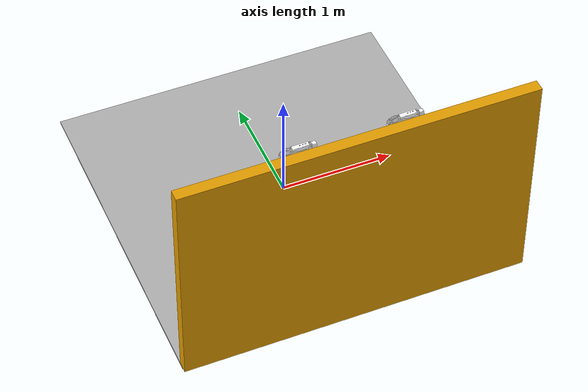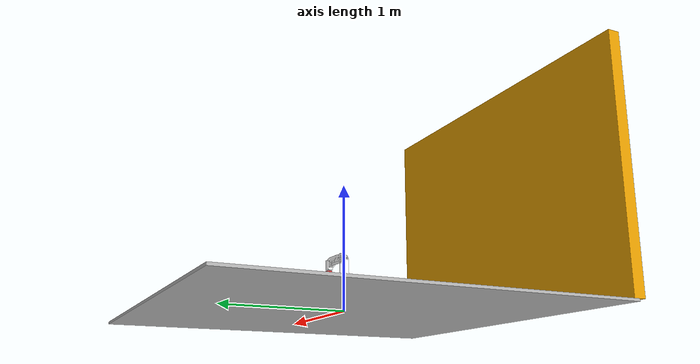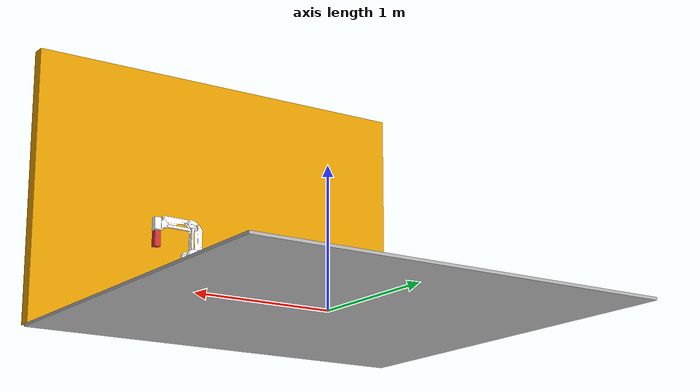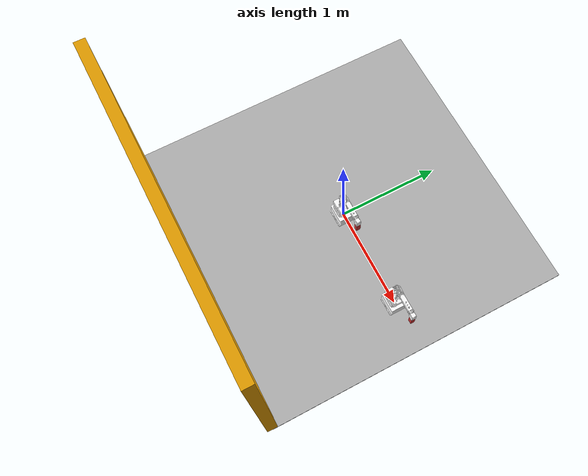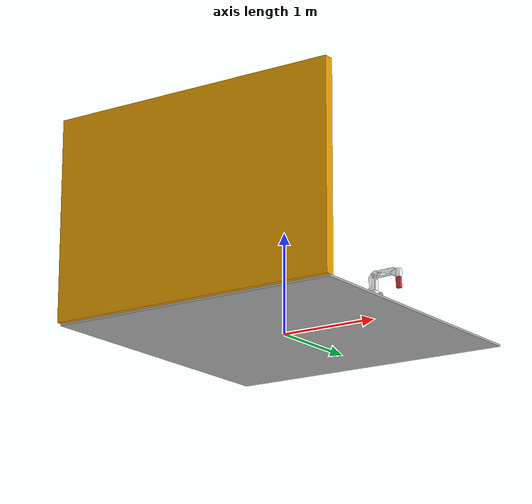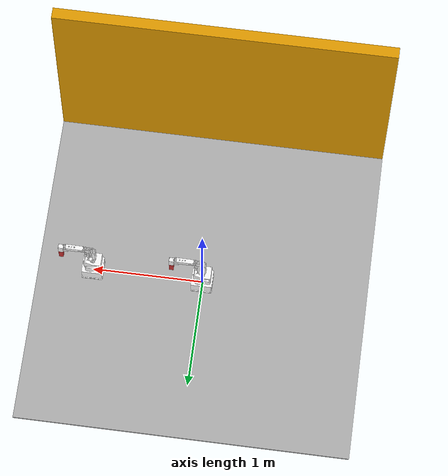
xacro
<?xml version="1.0" encoding="utf-8"?>
<robot xmlns:xacro="http://ros.org/wiki/xacro" name="dual_with_obstacles">

  <!-- Define the world frame as a link, so it’s never a child -->
  <link name="world"/>

  <!-- include your mg400 macro -->
  <xacro:include filename="mg400.urdf.xacro"/>
  <xacro:mg400 prefix="left_"  xyz="0.0 0.0 0.0" rpy="0 0 0"/>
  <xacro:mg400 prefix="right_" xyz="1.0 0.0 0.0" rpy="0 0 0"/>

  <!-- floor -->
  <link name="floor">
    <visual>
      <origin xyz="0 0 -0.01" rpy="0 0 0"/>
      <geometry><box size="3 3 0.02"/></geometry>
    </visual>
    <collision>
      <origin xyz="0 0 -0.01" rpy="0 0 0"/>
      <geometry><box size="3 3 0.02"/></geometry>
    </collision>
  </link>
  <joint name="floor_fixed" type="fixed">
    <parent link="world"/>
    <child  link="floor"/>
  </joint>

  <!-- back wall -->
  <link name="wall_back">
    <visual>
      <origin xyz="0 -1.5 1" rpy="0 0 0"/>
      <geometry><box size="3 0.1 2"/></geometry>
    </visual>
    <collision>
      <origin xyz="0 -1.5 1" rpy="0 0 0"/>
      <geometry><box size="3 0.1 2"/></geometry>
    </collision>
  </link>
  <joint name="wall_back_fixed" type="fixed">
    <parent link="world"/>
    <child  link="wall_back"/>
  </joint>

  <!-- add side walls, table, etc. in the same pattern -->

</robot>

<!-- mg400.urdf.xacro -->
<robot xmlns:xacro="http://ros.org/wiki/xacro" name="mg400_base">
  <!-- Macro definition: prefix all names, and attach base_link to 'world' at given pose -->
  <xacro:macro name="mg400" params="prefix xyz rpy">
    <!-- Fixed joint to attach this instance to the world -->
    <joint name="${prefix}fixed_to_world" type="fixed">
      <parent link="world"/>
      <child link="${prefix}base_link"/>
      <origin xyz="${xyz}" rpy="${rpy}"/>
    </joint>

    <!-- Begin original MG400 description, with all names prefixed -->
    <link name="${prefix}base_link">
      <inertial>
        <origin xyz="0.000600637 -0.000000253 0.056092789" rpy="0 0 0"/>
        <mass value="3.62164811695"/>
        <inertia ixx="0.01265821753" ixy="6.66832e-08" ixz="-3.52548e-06"
                 iyy="0.01458915353" iyz="5.15902e-08" izz="0.01950451167"/>
      </inertial>
      <visual>
        <origin xyz="0 0 0" rpy="0 0 0"/>
        <geometry>
          <mesh filename="package://mg400_description/meshes/base_link.STL"/>
        </geometry>
        <material name="base_link_material"><color rgba="1 1 1 1"/></material>
      </visual>
      <collision>
        <origin xyz="0 0 0" rpy="0 0 0"/>
        <geometry>
          <mesh filename="package://mg400_description/meshes/base_link.STL"/>
        </geometry>
      </collision>
    </link>

    <link name="${prefix}link1">
    <inertial>
      <origin xyz="-0.0046209286967387 -6.88107982318643E-05 0.0709919358465827" rpy="0 0 0"/>
      <mass value="1.77056222753813"/>
      <inertia
        ixx="0.00605885293080088" ixy="0.000156081820035162" ixz="-0.00021785654850453"
        iyy="0.00579381982249127" iyz="6.20876898015621E-05" izz="0.00741058257251941"/>
    </inertial>
    <visual>
      <origin xyz="0 0 0" rpy="0 0 0"/>
      <geometry>
        <mesh filename="package://mg400_description/meshes/link1.STL"/>
      </geometry>
      <material name="link1_material">
        <color rgba="1 1 1 1"/>
      </material>
    </visual>
    <collision>
      <origin xyz="0 0 0" rpy="0 0 0"/>
      <geometry>
        <mesh filename="package://mg400_description/meshes/link1.STL"/>
      </geometry>
    </collision>
  </link>
    <joint name="${prefix}j1" type="revolute">
      <origin xyz="-0.005 0 0.109" rpy="0 0 0"/>
      <parent link="${prefix}base_link"/>
      <child link="${prefix}link1"/>
      <axis xyz="0 0 1"/>
      <limit lower="-3.1416" upper="3.1416" effort="0" velocity="0"/>
    </joint>
        <link name="${prefix}link2_1">
      <inertial>
        <origin xyz="-0.003217885247567 0.0352926570826593 0.0596131328734945" rpy="0 0 0"/>
        <mass value="0.0866115884541459"/>
        <inertia ixx="0.000338551627157209" ixy="-2.78858228577314e-09" ixz="1.05212346076681e-05"
                 iyy="0.000307789653713489" iyz="-1.36109590152488e-06" izz="3.89949940178023e-05"/>
      </inertial>
      <visual>
        <origin xyz="0 0 0" rpy="0 0 0"/>
        <geometry><mesh filename="package://mg400_description/meshes/link2_1.STL"/></geometry>
        <material name="link2_1_material"><color rgba="1 1 1 1"/></material>
      </visual>
      <collision>
        <origin xyz="0 0 0" rpy="0 0 0"/>
        <geometry><mesh filename="package://mg400_description/meshes/link2_1.STL"/></geometry>
      </collision>
    </link>
    <joint name="${prefix}j2" type="revolute">
      <origin xyz="0.0435007595118091 -0.0357748756218899 0.118995682641123" rpy="0 0 0"/>
      <parent link="${prefix}link1"/>
      <child link="${prefix}link2_1"/>
      <axis xyz="0 1 0"/>
      <limit lower="-0.14" upper="1.39" effort="0" velocity="0"/>
    </joint>

    <link name="${prefix}link3_1">
      <inertial>
        <origin xyz="0.0821679417596488 0.000113044685842874 -0.00333758753063973" rpy="0 0 0"/>
        <mass value="0.0375214831045061"/>
        <inertia ixx="2.54761091812684e-06" ixy="3.73102654491378e-07" ixz="-2.02625705871199e-06"
                 iyy="0.000164234314177935" iyz="-1.44731096825347e-08" izz="0.000164331500854172"/>
      </inertial>
      <visual>
        <origin xyz="0 0 0" rpy="0 0 0"/>
        <geometry><mesh filename="package://mg400_description/meshes/link3_1.STL"/></geometry>
        <material name="link3_1_material"><color rgba="1 1 1 1"/></material>
      </visual>
      <collision>
        <origin xyz="0 0 0" rpy="0 0 0"/>
        <geometry><mesh filename="package://mg400_description/meshes/link3_1.STL"/></geometry>
      </collision>
    </link>
    <joint name="${prefix}j3_1" type="revolute">
      <parent link="${prefix}fake_link"/>
      <child link="${prefix}link3_1"/>
      <axis xyz="0 1 0"/>
      <limit lower="-3.14159265" upper="3.14159265" effort="0" velocity="0"/>
      <mimic joint="${prefix}j3_2"/>
    </joint>

    <link name="${prefix}link4_1">
      <inertial>
        <origin xyz="0.0387878182928232 0.0170848333998282 -0.0024610990490942" rpy="0 0 0"/>
        <mass value="0.0628979533925801"/>
        <inertia ixx="4.78483605712844e-05" ixy="1.42081909356751e-07" ixz="8.32917079044309e-06"
                 iyy="5.42362047732042e-05" iyz="-2.90608446019989e-08" izz="3.36120409842199e-05"/>
      </inertial>
      <visual>
        <origin xyz="0 0 0" rpy="0 0 0"/>
        <geometry><mesh filename="package://mg400_description/meshes/link4_1.STL"/></geometry>
        <material name="link4_1_material"><color rgba="1 1 1 1"/></material>
      </visual>
      <collision>
        <origin xyz="0 0 0" rpy="0 0 0"/>
        <geometry><mesh filename="package://mg400_description/meshes/link4_1.STL"/></geometry>
      </collision>
    </link>

    <link name="${prefix}fake_link"/>
    <joint name="${prefix}j3" type="revolute">
      <origin xyz="-0.0010512570171516 0.0357748756218898 0.175001164344716" rpy="0 0 0"/>
      <parent link="${prefix}link2_1"/>
      <child link="${prefix}fake_link"/>
      <axis xyz="0 1 0"/>
      <limit lower="0" upper="1.39" effort="0" velocity="0"/>
    </joint>

    <joint name="${prefix}j4_1" type="revolute">
      <origin xyz="0.174969784055705 -0.0170000000000335 0.00325187137614585" rpy="0 0 0"/>
      <parent link="${prefix}link3_1"/>
      <child link="${prefix}link4_1"/>
      <axis xyz="0 1 0"/>
      <limit lower="-3.14159265" upper="3.14159265" effort="0" velocity="0"/>
      <mimic joint="${prefix}j4_2" multiplier="-1"/>
    </joint>

    <link name="${prefix}link5">
      <inertial>
        <origin xyz="0 0 -0.0349688816440933" rpy="0 0 0"/>
        <mass value="0.0965276919819365"/>
        <inertia ixx="4.98589992160928e-05" ixy="-1.534865545378e-12" ixz="3.46424449605658e-10"
                 iyy="4.98589881725446e-05" iyz="-5.64890953414983e-17" izz="2.130463008359e-05"/>
      </inertial>
      <visual>
        <origin xyz="0 0 0" rpy="0 0 0"/>
        <geometry><mesh filename="package://mg400_description/meshes/link5.STL"/></geometry>
        <material name="link5_material"><color rgba="1 1 1 1"/></material>
      </visual>
      <collision>
        <origin xyz="0 0 0" rpy="0 0 0"/>
        <geometry><mesh filename="package://mg400_description/meshes/link5.STL"/></geometry>
      </collision>
    </link>

    <joint name="${prefix}j4" type="revolute">
      <origin xyz="0.0659996239003897 0.0170000000000371 0.031000800715573" rpy="0 0 0"/>
      <parent link="${prefix}link4_1"/>
      <child link="${prefix}link5"/>
      <axis xyz="-1.19408295462994e-05 0 0.999999999928708"/>
      <limit lower="-3.14159265" upper="3.14159265" effort="0" velocity="0"/>
    </joint>

    <link name="${prefix}link2_2">
      <inertial>
        <origin xyz="-0.0201111131723385 0.0304999635268521 0.073632809340276" rpy="0 0 0"/>
        <mass value="0.0662546292985346"/>
        <inertia ixx="0.000218973873589181" ixy="3.0147933007673e-10" ixz="2.51402553227571e-06"
                 iyy="0.000200510070261609" iyz="-1.41837669904595e-09" izz="3.74316777806776e-05"/>
      </inertial>
      <visual>
        <origin xyz="0 0 0" rpy="0 0 0"/>
        <geometry><mesh filename="package://mg400_description/meshes/link2_2.STL"/></geometry>
        <material name="link2_2_material"><color rgba="1 1 1 1"/></material>
      </visual>
      <collision>
        <origin xyz="0 0 0" rpy="0 0 0"/>
        <geometry><mesh filename="package://mg400_description/meshes/link2_2.STL"/></geometry>
      </collision>
    </link>

    <joint name="${prefix}j2_2" type="revolute">
      <origin xyz="0.00452885682964267 -0.0305 0.1415" rpy="0 0 0"/>
      <parent link="${prefix}link1"/>
      <child link="${prefix}link2_2"/>
      <axis xyz="0 1 0"/>
      <limit lower="-3.14159265" upper="3.14159265" effort="0" velocity="0"/>
      <mimic joint="${prefix}j2"/>
    </joint>

    <link name="${prefix}link3_2">
      <inertial>
        <origin xyz="0.0338566736074436 0.0240208873857428 0.00452229895926692" rpy="0 0 0"/>
        <mass value="0.0366692789294813"/>
        <inertia ixx="7.24011830695354e-06" ixy="7.93542746250724e-10" ixz="-1.69163254472566e-06"
                 iyy="2.34967008246727e-05" iyz="4.55507111386579e-10" izz="1.66831643179488e-05"/>
      </inertial>
      <visual>
        <origin xyz="0 0 0" rpy="0 0 0"/>
        <geometry><mesh filename="package://mg400_description/meshes/link3_2.STL"/></geometry>
        <material name="link3_2_material"><color rgba="1 1 1 1"/></material>
      </visual>
      <collision>
        <origin xyz="0 0 0" rpy="0 0 0"/>
        <geometry><mesh filename="package://mg400_description/meshes/link3_2.STL"/></geometry>
      </collision>
    </link>

    <joint name="${prefix}j3_2" type="revolute">
      <origin xyz="-0.00105049750546494 0.0065 0.174996846985851" rpy="0 0 0"/>
      <parent link="${prefix}link2_2"/>
      <child link="${prefix}link3_2"/>
      <axis xyz="0 1 0"/>
      <limit lower="-3.14159265" upper="3.14159265" effort="0" velocity="0"/>
      <mimic joint="${prefix}j2_2" multiplier="-1"/>
    </joint>

    <link name="${prefix}link4_2">
      <inertial>
        <origin xyz="0.0876391591012518 0.023499867452275 0.00831492252441945" rpy="0 0 0"/>
        <mass value="0.0453569016333092"/>
        <inertia ixx="2.00037596001325e-05" ixy="3.34474706250153e-09" ixz="2.17594982354756e-07"
                 iyy="0.000132049841023893" iyz="5.36978669669685e-10" izz="0.000141813978894428"/>
      </inertial>
      <visual>
        <origin xyz="0 0 0" rpy="0 0 0"/>
        <geometry><mesh filename="package://mg400_description/meshes/link4_2.STL"/></geometry>
        <material name="link4_2_material"><color rgba="1 1 1 1"/></material>
      </visual>
      <collision>
        <origin xyz="0 0 0" rpy="0 0 0"/>
        <geometry><mesh filename="package://mg400_description/meshes/link4_2.STL"/></geometry>
      </collision>
    </link>

    <joint name="${prefix}j4_2" type="revolute">
      <origin xyz="0.0678965856063864 0.0005 0.0119719999403219" rpy="0 0 0"/>
      <parent link="${prefix}link3_2"/>
      <child link="${prefix}link4_2"/>
      <axis xyz="0 1 0"/>
      <limit lower="-3.14159265" upper="3.14159265" effort="0" velocity="0"/>
      <mimic joint="${prefix}j3"/>
    </joint>

    <link name="${prefix}tool_link">
      <inertial>
        <origin xyz="0 0 -0.05" rpy="0 0 0"/>
        <mass value="0.1"/>
        <inertia ixx="0.0001" ixy="0" ixz="0"
                 iyy="0.0001" iyz="0" izz="0.0001"/>
      </inertial>
      <visual>
        <origin xyz="0 0 -0.13" rpy="0 0 0"/>
        <geometry><box size="0.04 0.04 0.10"/></geometry>
        <material name="tool_mat"><color rgba="0.8 0.2 0.2 1.0"/></material>
      </visual>
      <collision>
        <origin xyz="0 0 -0.13" rpy="0 0 0"/>
        <geometry><box size="0.04 0.04 0.10"/></geometry>
      </collision>
    </link>
    <joint name="${prefix}tool_fixed_joint" type="fixed">
      <parent link="${prefix}link5"/>
      <child link="${prefix}tool_link"/>
      <origin xyz="0 0 0" rpy="0 0 0"/>
    </joint>

  </xacro:macro>
</robot>
